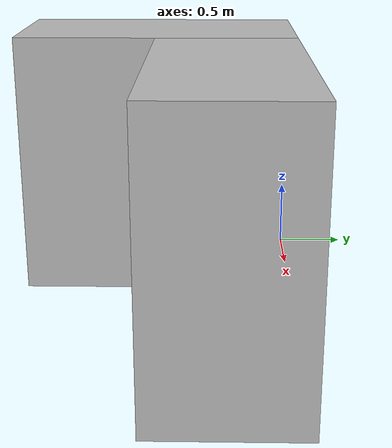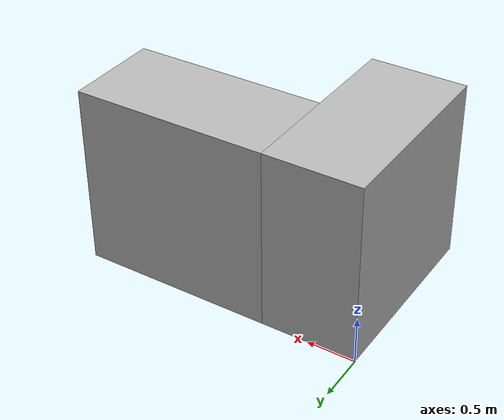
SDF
<?xml version="1.0"?>
<sdf version="1.6">
  <model name="obstacle_08">
    <static>true</static>

    <link name="link_08_1">
      <pose frame=''>0.50 -1.00 0.95 0 -0 0</pose>
      <collision name="body_collision">
        <geometry>
          <box>
            <size>1.00 2.00 1.90</size>
          </box>
        </geometry>
      </collision>

      <visual name="visual_08_1">
	<pose frame=''>0 0 0 0 -0 0</pose>
        <geometry>
          <box>
            <size>1.00 2.00 1.90</size>
          </box>
	</geometry>

	    <material>
		<script>
			<uri>model://obstacle_08/materials/scripts</uri>
			<uri>model://obstacle_08/materials/textures</uri>
			<name>repeated_08</name>
		</script>
	    </material>

      </visual>

    </link>

    <link name="link_08_2">
      <pose frame=''>2.00 -0.50 0.95 0 -0 0</pose>
      <collision name="body_collision">
        <geometry>
          <box>
            <size>2.00 1.00 1.90</size>
          </box>
        </geometry>
      </collision>

      <visual name="visual_08_2">
	<pose frame=''>0 0 0 0 -0 0</pose>
        <geometry>
          <box>
            <size>2.00 1.00 1.90</size>
          </box>
	</geometry>

	    <material>
		<script>
			<uri>model://obstacle_08/materials/scripts</uri>
			<uri>model://obstacle_08/materials/textures</uri>
			<name>repeated_08</name>
		</script>
	    </material>

      </visual>

    </link>

  </model>
</sdf>
